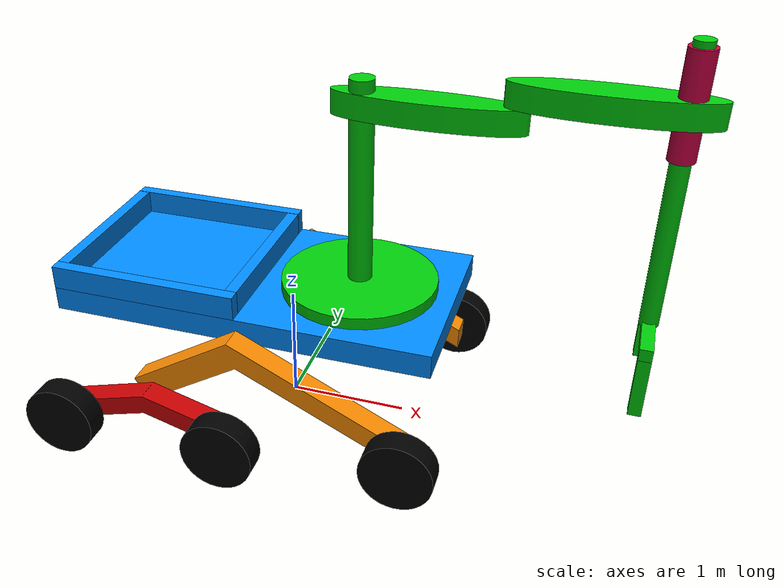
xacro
<?xml version="1.0"?>
<robot name="Robot_Rover" xmlns:xacro="http://www.ros.org/wiki/xacro">

<!-- ARGUMENTOS -->
<xacro:arg name="prefix" default="rover"/>
<xacro:arg name="update_rate" default="30"/>

<!-- IMPORTS -->
<xacro:include filename="$(find practica3)/urdf/base/robot_base.urdf.xacro"/>
<xacro:include filename="$(find practica3)/urdf/wheels/wheels.urdf.xacro"/>
<xacro:include filename="$(find practica3)/urdf/arm/arm.urdf.xacro"/>

<xacro:include filename="$(find practica3)/urdf/sensors/imu.urdf.xacro"/>
<xacro:include filename="$(find practica3)/urdf/sensors/camera_front.urdf.xacro"/>
<xacro:include filename="$(find practica3)/urdf/sensors/camera_ee.urdf.xacro"/>

<xacro:include filename="$(find practica3)/urdf/utils/materials.xacro"/>

<!-- REP-105 -->
<link name="base_footprint"/>
<joint name="base_footprint_joint" type="fixed">
  <parent link="base_footprint"/>
  <child link="base_link"/>
  <origin xyz="0 0 1.5" rpy="0 0 0"/>
</joint>

<!-- MATERIALS -->
<xacro:materials/>

<!-- ROBOT -->
<xacro:robot_base/>
<xacro:wheels/>
<xacro:robot_arm/>

<!-- SENSORES -->
<xacro:imu prefix="$(arg prefix)" update_rate="$(arg update_rate)"/>
<xacro:camera_front prefix="$(arg prefix)" update_rate="$(arg update_rate)"/>
<xacro:camera_ee prefix="$(arg prefix)" update_rate="$(arg update_rate)"/>

<!-- ROS2 CONTROL -->
<xacro:include filename="$(find practica3)/urdf/ros2_control.urdf.xacro"/>
<xacro:arg name="config_controllers" default="$(find practica3)/config/rover_controllers.yaml"/>
<xacro:arg name="update_rate" default="100"/>
<xacro:ros2_control/>

</robot>

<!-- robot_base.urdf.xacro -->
<robot xmlns:xacro="http://www.ros.org/wiki/xacro">

<xacro:macro name="robot_base">

  <!-- BASE -->
  <link name="base_link"/>

  <link name="Body_link">
    <visual>
      <origin xyz="-0.2 0 -0.4" rpy="0 0 0"/>
      <geometry>
        <mesh filename="package://practica3/meshes/dae/Cube.014.dae"
              scale="1.6 0.8 0.1"/>
      </geometry>
    </visual>

    <collision>
      <origin xyz="-0.2 0 -0.4" rpy="0 0 0"/>
      <geometry>
        <mesh filename="package://practica3/meshes/dae/Cube.014.dae"
              scale="1.6 0.8 0.1"/>
      </geometry>
    </collision>

    <inertial>
      <origin xyz="-0.2 0 -0.4" rpy="0 0 0"/>
      <mass value="15.0"/>
      <inertia
        ixx="3.25"
        ixy="0.0"
        ixz="0.0"
        iyy="12.85"
        iyz="0.0"
        izz="16.0"/>
    </inertial>
  </link>

  <joint name="base_joint" type="fixed">
    <parent link="base_link"/>
    <child link="Body_link"/>
  </joint>

  <!-- LATERAL 1 -->
  <link name="Lat1_link">
    <visual>
      <origin xyz="0 0 0" rpy="0 0 0"/>
      <geometry>
        <mesh filename="package://practica3/meshes/dae/Cube.015.dae"
              scale="0.8 0.05 0.1"/>
      </geometry>
    </visual>

    <collision>
      <origin xyz="0 0 0" rpy="0 0 0"/>
      <geometry>
        <mesh filename="package://practica3/meshes/dae/Cube.015.dae"
              scale="0.8 0.05 0.1"/>
      </geometry>
    </collision>

    <inertial>
      <origin xyz="0 0 0" rpy="0 0 0"/>
      <mass value="1.0"/>
      <inertia
        ixx="0.16667"
        ixy="0.0"
        ixz="0.0"
        iyy="0.00417"
        iyz="0.0"
        izz="0.16417"/>
    </inertial>
  </link>

  <joint name="Lat1_link_joint" type="fixed">
    <parent link="Body_link"/>
    <child link="Lat1_link"/>
    <origin xyz="-1.0 -0.75 -0.2" rpy="0 0 0"/>
  </joint>

  <!-- LATERAL 2 -->
  <link name="Lat2_link">
    <visual>
      <origin xyz="0 0 0" rpy="0 0 0"/>
      <geometry>
        <mesh filename="package://practica3/meshes/dae/Cube.016.dae"
              scale="0.8 0.05 0.1"/>
      </geometry>
    </visual>

    <collision>
      <origin xyz="0 0 0" rpy="0 0 0"/>
      <geometry>
        <mesh filename="package://practica3/meshes/dae/Cube.016.dae"
              scale="0.8 0.05 0.1"/>
      </geometry>
    </collision>

    <inertial>
      <origin xyz="0 0 0" rpy="0 0 0"/>
      <mass value="1.0"/>
      <inertia
        ixx="0.16667"
        ixy="0.0"
        ixz="0.0"
        iyy="0.00417"
        iyz="0.0"
        izz="0.16417"/>
    </inertial>
  </link>

  <joint name="Lat2_link_joint" type="fixed">
    <parent link="Body_link"/>
    <child link="Lat2_link"/>
    <origin xyz="-1.0 0.75 -0.2" rpy="-0.01745 0 0"/>
  </joint>

  <!-- LATERAL 3 -->
  <link name="Lat3_link">
    <visual>
      <origin xyz="0 0 0" rpy="0 0 0"/>
      <geometry>
        <mesh filename="package://practica3/meshes/dae/Cube.017.dae"
              scale="0.7 0.05 0.1"/>
      </geometry>
    </visual>

    <collision>
      <origin xyz="0 0 0" rpy="0 0 0"/>
      <geometry>
        <mesh filename="package://practica3/meshes/dae/Cube.017.dae"
              scale="0.7 0.05 0.1"/>
      </geometry>
    </collision>

    <inertial>
      <origin xyz="0 0 0" rpy="0 0 0"/>
      <mass value="1.0"/>
      <inertia
        ixx="0.16667"
        ixy="0.0"
        ixz="0.0"
        iyy="0.00417"
        iyz="0.0"
        izz="0.16417"/>
    </inertial>
  </link>

  <joint name="Lat3_link_joint" type="fixed">
    <parent link="Body_link"/>
    <child link="Lat3_link"/>
    <origin xyz="-0.25 0 -0.2" rpy="0 0 1.5708"/>
  </joint>

  <!-- LATERAL 4 -->
  <link name="Lat4_link">
    <visual>
      <origin xyz="0 0 0" rpy="0 0 0"/>
      <geometry>
        <mesh filename="package://practica3/meshes/dae/Cube.145.dae"
              scale="0.7 0.05 0.1"/>
      </geometry>
    </visual>

    <collision>
      <origin xyz="0 0 0" rpy="0 0 0"/>
      <geometry>
        <mesh filename="package://practica3/meshes/dae/Cube.145.dae"
              scale="0.7 0.05 0.1"/>
      </geometry>
    </collision>

    <inertial>
      <origin xyz="0 0 0" rpy="0 0 0"/>
      <mass value="1.0"/>
      <inertia
        ixx="0.16667"
        ixy="0.0"
        ixz="0.0"
        iyy="0.00417"
        iyz="0.0"
        izz="0.16417"/>
    </inertial>
  </link>

  <joint name="Lat4_link_joint" type="fixed">
    <parent link="Body_link"/>
    <child link="Lat4_link"/>
    <origin xyz="-1.75 0 -0.2" rpy="0 0 1.5708"/>
  </joint>

</xacro:macro>

</robot>

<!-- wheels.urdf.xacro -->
<robot xmlns:xacro="http://www.ros.org/wiki/xacro">

  <xacro:macro name="wheels">

    <!-- Estructura lateral izquierda -->
    <link name="Left_Main_link">
      <visual>
        <origin xyz="-0.35 0 -0.25" rpy="3.14 0.55 3.14"/>
        <geometry>
          <mesh filename="package://practica3/meshes/dae/Cube.001.dae"
                scale="1.0 1.0 1.0"/>
        </geometry>
      </visual>

      <collision>
        <origin xyz="-0.35 0 -0.25" rpy="3.14 0.55 3.14"/>
        <geometry>
          <mesh filename="package://practica3/meshes/dae/Cube.001.dae"
                scale="1.0 1.0 1.0"/>
        </geometry>
      </collision>

      <inertial>
        <origin xyz="0 0 0" rpy="0 0 0"/>
        <mass value="5.0"/>
        <inertia
          ixx="0.20056"
          ixy="0.0"
          ixz="0.29280"
          iyy="2.04375"
          iyz="0.0"
          izz="1.87180"/>
      </inertial>
    </link>

    <joint name="Left_Main_link_joint" type="fixed">
      <parent link="base_link"/>
      <child link="Left_Main_link"/>
      <origin xyz="-0.2 -0.9 -0.5" rpy="0 0 0"/>
    </joint>

    <!-- Brazo trasero izquierdo -->
    <link name="Left_Rear_2_link">
      <visual>
        <origin xyz="0.4 0 0" rpy="1.5708 0 -0.27"/>
        <geometry>
          <mesh filename="package://practica3/meshes/dae/Cube.010.dae"
                scale="1.0 1.0 1.0"/>
        </geometry>
      </visual>

      <collision>
        <origin xyz="0.4 0 0" rpy="1.5708 0 -0.27"/>
        <geometry>
          <mesh filename="package://practica3/meshes/dae/Cube.010.dae"
                scale="1.0 1.0 1.0"/>
        </geometry>
      </collision>

      <inertial>
        <origin xyz="0 0 0" rpy="0 0 0"/>
        <mass value="3.0"/>
        <inertia
          ixx="0.02064"
          ixy="0.0"
          ixz="-0.00874"
          iyy="0.53718"
          iyz="0.0"
          izz="0.52139"/>
      </inertial>
    </link>

    <joint name="Left_Rear_2_link_joint" type="fixed">
      <parent link="Left_Main_link"/>
      <child link="Left_Rear_2_link"/>
      <origin xyz="-0.7 -0.2 -0.6" rpy="1.5708 0 0"/>
    </joint>

    <!-- Rueda delantera izquierda -->
    <link name="Front_Left_Tire_link">
      <visual>
        <origin xyz="0 0 0" rpy="0 0 0"/>
        <geometry>
          <mesh filename="package://practica3/meshes/dae/Cylinder.001.dae"
                scale="1.0 1.0 1.0"/>
        </geometry>
      </visual>

      <collision>
        <origin xyz="0 0 0" rpy="0 0 0"/>
        <geometry>
          <mesh filename="package://practica3/meshes/dae/Cylinder.001.dae"
                scale="1.0 1.0 1.0"/>
        </geometry>
        <surface>
          <friction>
            <ode>
              <mu>1.000000</mu>
              <mu2>1.000000</mu2>
              <fdir1>0.000000 0.000000 1.000000</fdir1>
              <slip1>0.0050000</slip1>
              <slip2>0.0050000</slip2>
            </ode>
          </friction>
        </surface>
      </collision>

      <inertial>
        <origin xyz="0 0 0"/>
        <mass value="2.0"/>
        <inertia
          ixx="0.05138"
          ixy="0.0"
          ixz="0.0"
          iyy="0.08942"
          iyz="0.0"
          izz="0.05138"/>
      </inertial>
    </link>

    <joint name="Front_Left_Tire_link_joint" type="continuous">
      <parent link="Left_Main_link"/>
      <child link="Front_Left_Tire_link"/>
      <origin xyz="1.45 -0.2 -0.7" rpy="1.5708 0 0"/>
      <axis xyz="0 0 -1"/>
    </joint>

    <transmission name="front_left_trans">
      <type>transmission_interface/SimpleTransmission</type>
        <joint name="Front_Left_Tire_link_joint">
        <hardwareInterface>hardware_interface/VelocityJointInterface</hardwareInterface>
        </joint>
      <actuator name="front_left_motor">
        <hardwareInterface>hardware_interface/VelocityJointInterface</hardwareInterface>
        <mechanicalReduction>1</mechanicalReduction>
      </actuator>
    </transmission>

    <gazebo reference="Front_Left_Tire_link">
        <mu1>5</mu1>
        <mu2>5</mu2>
    </gazebo>

    <!-- Ruedas traseras izquierdas -->
    <link name="Back_Left_Tire1_link">
      <visual>
        <origin xyz="0 0 0" rpy="0 0 0"/>
        <geometry>
          <mesh filename="package://practica3/meshes/dae/Cylinder.002.dae"
                scale="1.0 1.0 1.0"/>
        </geometry>
      </visual>

      <collision>
        <origin xyz="0 0 0" rpy="0 0 0"/>
        <geometry>
          <mesh filename="package://practica3/meshes/dae/Cylinder.002.dae"
                scale="1.0 1.0 1.0"/>
        </geometry>
        <surface>
          <friction>
            <ode>
              <mu>1.000000</mu>
              <mu2>1.000000</mu2>
              <fdir1>0.000000 0.000000 1.000000</fdir1>
              <slip1>0.0050000</slip1>
              <slip2>0.0050000</slip2>
            </ode>
          </friction>
        </surface>
      </collision>

      <inertial>
        <origin xyz="0 0 0"/>
        <mass value="2.0"/>
        <inertia
          ixx="0.05138"
          ixy="0.0"
          ixz="0.0"
          iyy="0.08942"
          iyz="0.0"
          izz="0.05138"/>
      </inertial>
    </link>

    <joint name="Back_Left_Tire1_link_joint" type="continuous">
      <parent link="Left_Rear_2_link"/>
      <child link="Back_Left_Tire1_link"/>
      <origin xyz="0.75 -0.1 0.2" rpy="0 0 0"/>
      <axis xyz="0 0 -1"/>
    </joint>

    <transmission name="back_left_1_trans">
      <type>transmission_interface/SimpleTransmission</type>
      <joint name="Back_Left_Tire1_link_joint">
        <hardwareInterface>hardware_interface/VelocityJointInterface</hardwareInterface>
      </joint>
      <actuator name="back_left_motor_1">
        <hardwareInterface>hardware_interface/VelocityJointInterface</hardwareInterface>
        <mechanicalReduction>1</mechanicalReduction>
      </actuator>
    </transmission>

    <gazebo reference="Back_Left_Tire1_link">
        <mu1>5</mu1>
        <mu2>5</mu2>
    </gazebo>

    <link name="Back_Left_Tire2_link">
      <visual>
        <origin xyz="0 0 0" rpy="0 0 0"/>
        <geometry>
          <mesh filename="package://practica3/meshes/dae/Cylinder.002.dae"
                scale="1.0 1.0 1.0"/>
        </geometry>
      </visual>

      <collision>
        <origin xyz="0 0 0" rpy="0 0 0"/>
        <geometry>
          <mesh filename="package://practica3/meshes/dae/Cylinder.002.dae"
                scale="1.0 1.0 1.0"/>
        </geometry>
        <surface>
          <friction>
            <ode>
              <mu>1.000000</mu>
              <mu2>1.000000</mu2>
              <fdir1>0.000000 0.000000 1.000000</fdir1>
              <slip1>0.0050000</slip1>
              <slip2>0.0050000</slip2>
            </ode>
          </friction>
        </surface>
      </collision>

      <inertial>
        <origin xyz="0 0 0"/>
        <mass value="2.0"/>
        <inertia
          ixx="0.05138"
          ixy="0.0"
          ixz="0.0"
          iyy="0.08942"
          iyz="0.0"
          izz="0.05138"/>
      </inertial>
    </link>

    <joint name="Back_Left_Tire2_link_joint" type="continuous">
      <parent link="Left_Rear_2_link"/>
      <child link="Back_Left_Tire2_link"/>
      <origin xyz="-0.65 -0.1 0.2" rpy="0 0 0"/>
      <axis xyz="0 0 -1"/>
    </joint>

    <transmission name="back_left_2_trans">
      <type>transmission_interface/SimpleTransmission</type>
        <joint name="Back_Left_Tire2_link_joint">
          <hardwareInterface>hardware_interface/VelocityJointInterface</hardwareInterface>
        </joint>
      <actuator name="back_left_motor_2">
        <hardwareInterface>hardware_interface/VelocityJointInterface</hardwareInterface>
        <mechanicalReduction>1</mechanicalReduction>
      </actuator>
  </transmission>

    <gazebo reference="Back_Left_Tire2_link">
        <mu1>5</mu1>
        <mu2>5</mu2>
    </gazebo>

    <!-- Estructura lateral derecha -->
    <link name="Right_Main_link">
      <visual>
        <origin xyz="-0.35 0 -0.25" rpy="3.14 0.55 3.14"/>
        <geometry>
          <mesh filename="package://practica3/meshes/dae/Cube.005.dae"
                scale="1.0 1.0 1.0"/>
        </geometry>
      </visual>

      <collision>
        <origin xyz="-0.35 0 -0.25" rpy="3.14 0.55 3.14"/>
        <geometry>
          <mesh filename="package://practica3/meshes/dae/Cube.005.dae"
                scale="1.0 1.0 1.0"/>
        </geometry>
      </collision>

      <inertial>
        <origin xyz="0 0 0"/>
        <mass value="5.0"/>
        <inertia
          ixx="0.20056"
          ixy="0.0"
          ixz="0.29280"
          iyy="2.04375"
          iyz="0.0"
          izz="1.87180"/>
      </inertial>
    </link>

    <joint name="Right_Main_link_joint" type="fixed">
      <parent link="base_link"/>
      <child link="Right_Main_link"/>
      <origin xyz="-0.2 0.9 -0.5" rpy="3.14 3.14 3.14"/>
    </joint>

    <!-- Brazo trasero derecho -->
    <link name="Right_Rear_2_link">
      <visual>
        <origin xyz="0.4 0 0" rpy="1.5708 0 -0.25"/>
        <geometry>
          <mesh filename="package://practica3/meshes/dae/Cube.010.dae"
                scale="1.0 1.0 1.0"/>
        </geometry>
      </visual>

      <collision>
        <origin xyz="0.4 0 0" rpy="1.5708 0 -0.25"/>
        <geometry>
          <mesh filename="package://practica3/meshes/dae/Cube.010.dae"
                scale="1.0 1.0 1.0"/>
        </geometry>
      </collision>

      <inertial>
        <origin xyz="0 0 0"/>
        <mass value="3.0"/>
        <inertia
          ixx="0.02064"
          ixy="0.0"
          ixz="-0.00874"
          iyy="0.53718"
          iyz="0.0"
          izz="0.52139"/>
      </inertial>
    </link>

    <joint name="Right_Rear_2_link_joint" type="fixed">
      <parent link="Right_Main_link"/>
      <child link="Right_Rear_2_link"/>
      <origin xyz="-0.7 0.2 -0.6" rpy="1.5708 0 3.1416"/>
    </joint>

    <!-- Rueda delantera derecha -->
    <link name="Front_Right_Tire_link">
      <visual>
        <origin xyz="0 0 0" rpy="0 0 0"/>
        <geometry>
          <mesh filename="package://practica3/meshes/dae/Cylinder.dae"
                scale="1.0 1.0 1.0"/>
        </geometry>
      </visual>

      <collision>
        <origin xyz="0 0 0" rpy="0 0 0"/>
        <geometry>
          <mesh filename="package://practica3/meshes/dae/Cylinder.dae"
                scale="1.0 1.0 1.0"/>
        </geometry>
        <surface>
          <friction>
            <ode>
              <mu>1.000000</mu>
              <mu2>1.000000</mu2>
              <fdir1>0.000000 0.000000 1.000000</fdir1>
              <slip1>0.0050000</slip1>
              <slip2>0.0050000</slip2>
            </ode>
          </friction>
        </surface>
      </collision>

      <inertial>
        <origin xyz="0 0 0"/>
        <mass value="2.0"/>
        <inertia
          ixx="0.05138"
          ixy="0.0"
          ixz="0.0"
          iyy="0.08942"
          iyz="0.0"
          izz="0.05138"/>
      </inertial>
    </link>

    <joint name="Front_Right_Tire_link_joint" type="continuous">
      <parent link="Right_Main_link"/>
      <child link="Front_Right_Tire_link"/>
      <origin xyz="1.45 0.2 -0.7" rpy="-1.5708 0 0"/>
      <axis xyz="0 0 -1"/>
    </joint>

    <transmission name="front_right_trans">
      <type>transmission_interface/SimpleTransmission</type>
        <joint name="Front_Right_Tire_link_joint">
        <hardwareInterface>hardware_interface/VelocityJointInterface</hardwareInterface>
      </joint>
      <actuator name="front_right_motor">
        <hardwareInterface>hardware_interface/VelocityJointInterface</hardwareInterface>
        <mechanicalReduction>1</mechanicalReduction>
      </actuator>
    </transmission>

    <gazebo reference="Front_Right_Tire_link">
        <mu1>5</mu1>
        <mu2>5</mu2>
    </gazebo>

    <!-- Ruedas traseras derechas -->
    <link name="Back_Right_Tire1_link">
      <visual>
        <origin xyz="0 0 0" rpy="0 0 0"/>
        <geometry>
          <mesh filename="package://practica3/meshes/dae/Cylinder.003.dae"
                scale="1.0 1.0 1.0"/>
        </geometry>
      </visual>

      <collision>
        <origin xyz="0 0 0" rpy="0 0 0"/>
        <geometry>
          <mesh filename="package://practica3/meshes/dae/Cylinder.003.dae"
                scale="1.0 1.0 1.0"/>
        </geometry>
        <surface>
          <friction>
            <ode>
              <mu>1.000000</mu>
              <mu2>1.000000</mu2>
              <fdir1>0.000000 0.000000 1.000000</fdir1>
              <slip1>0.0050000</slip1>
              <slip2>0.0050000</slip2>
            </ode>
          </friction>
        </surface>
      </collision>

      <inertial>
        <origin xyz="0 0 0"/>
        <mass value="2.0"/>
        <inertia
          ixx="0.05138"
          ixy="0.0"
          ixz="0.0"
          iyy="0.08942"
          iyz="0.0"
          izz="0.05138"/>
      </inertial>
    </link>

    <joint name="Back_Right_Tire1_link_joint" type="continuous">
      <parent link="Right_Rear_2_link"/>
      <child link="Back_Right_Tire1_link"/>
      <origin xyz="-0.65 -0.1 0.2" rpy="0 0 0"/>
      <axis xyz="0 0 -1"/>
    </joint>

    <transmission name="back_right_1_trans">
      <type>transmission_interface/SimpleTransmission</type>
        <joint name="Back_Right_Tire1_link_joint">
          <hardwareInterface>hardware_interface/VelocityJointInterface</hardwareInterface>
        </joint>
        <actuator name="back_right_motor_1">
          <hardwareInterface>hardware_interface/VelocityJointInterface</hardwareInterface>
          <mechanicalReduction>1</mechanicalReduction>
        </actuator>
    </transmission>

    <gazebo reference="Back_Right_Tire1_link">
        <mu1>5</mu1>
        <mu2>5</mu2>
    </gazebo>

    <link name="Back_Right_Tire2_link">
      <visual>
        <origin xyz="0 0 0" rpy="0 0 0"/>
        <geometry>
          <mesh filename="package://practica3/meshes/dae/Cylinder.004.dae"
                scale="1.0 1.0 1.0"/>
        </geometry>
      </visual>

      <collision>
        <origin xyz="0 0 0" rpy="0 0 0"/>
        <geometry>
          <mesh filename="package://practica3/meshes/dae/Cylinder.004.dae"
                scale="1.0 1.0 1.0"/>
        </geometry>
        <surface>
          <friction>
            <ode>
              <mu>1.000000</mu>
              <mu2>1.000000</mu2>
              <fdir1>0.000000 0.000000 1.000000</fdir1>
              <slip1>0.0050000</slip1>
              <slip2>0.0050000</slip2>
            </ode>
          </friction>
        </surface>
      </collision>

      <inertial>
        <origin xyz="0 0 0"/>
        <mass value="2.0"/>
        <inertia
          ixx="0.05138"
          ixy="0.0"
          ixz="0.0"
          iyy="0.08942"
          iyz="0.0"
          izz="0.05138"/>
      </inertial>
    </link>

    <joint name="Back_Right_Tire2_link_joint" type="continuous">
      <parent link="Right_Rear_2_link"/>
      <child link="Back_Right_Tire2_link"/>
      <origin xyz="0.75 -0.1 0.2" rpy="0 0 0"/>
      <axis xyz="0 0 -1"/>
    </joint>

    <transmission name="back_right_2_trans">
      <type>transmission_interface/SimpleTransmission</type>
        <joint name="Back_Right_Tire2_link_joint">
          <hardwareInterface>hardware_interface/VelocityJointInterface</hardwareInterface>
        </joint>
        <actuator name="back_right_motor_2">
          <hardwareInterface>hardware_interface/VelocityJointInterface</hardwareInterface>
          <mechanicalReduction>1</mechanicalReduction>
        </actuator>
    </transmission>

    <gazebo reference="Back_Right_Tire2_link">
        <mu1>5</mu1>
        <mu2>5</mu2>
    </gazebo>

  </xacro:macro>

</robot>

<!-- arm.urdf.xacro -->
<robot xmlns:xacro="http://www.ros.org/wiki/xacro">

<xacro:macro name="robot_arm">

  <!-- ARM 1 -->
  <link name="Arm1_link">
    <visual>
      <origin xyz="0 0 1.0" rpy="0 0 0"/>
      <geometry>
        <mesh filename="package://practica3/meshes/dae/Cylinder.008.dae"
              scale="0.1 0.1 0.85"/>
      </geometry>
    </visual>

    <collision>
      <origin xyz="0 0 1.0" rpy="0 0 0"/>
      <geometry>
        <mesh filename="package://practica3/meshes/dae/Cylinder.008.dae"
              scale="0.1 0.1 0.85"/>
      </geometry>
    </collision>

    <inertial>
      <origin xyz="0 0 0.35823" rpy="0 0 0"/>
      <mass value="4.0"/>
      <inertia
        ixx="0.89612"
        ixy="0.0"
        ixz="0.0"
        iyy="0.89612"
        iyz="0.0"
        izz="0.53844"/>
    </inertial>
  </link>

  <joint name="Arm1_link_joint" type="fixed">
    <parent link="Body_link"/>
    <child link="Arm1_link"/>
    <origin xyz="0.6 0 -0.35"/>
  </joint>

  <!-- ARM 2 -->
  <link name="Arm2_link">
    <visual>
      <origin xyz="0.5 0 0" rpy="0 0 0"/>
      <geometry>
        <mesh filename="package://practica3/meshes/dae/Cylinder.009.dae"
              scale="0.75 0.15 0.1"/>
      </geometry>
    </visual>

    <collision>
      <origin xyz="0.5 0 0" rpy="0 0 0"/>
      <geometry>
        <mesh filename="package://practica3/meshes/dae/Cylinder.009.dae"
              scale="0.75 0.15 0.1"/>
      </geometry>
    </collision>

    <inertial>
      <origin xyz="0.54878 0 0" rpy="0 0 0"/>
      <mass value="4.0"/>
      <inertia
        ixx="0.03414"
        ixy="-0.00071"
        ixz="-0.00072"
        iyy="0.80029"
        iyz="0.0"
        izz="0.80928"/>
    </inertial>
  </link>

  <joint name="Arm2_link_joint" type="revolute">
    <parent link="Arm1_link"/>
    <child link="Arm2_link"/>
    <origin xyz="0 0 1.65"/>
    <axis xyz="0 0 1"/>
    <limit lower="-6.28" upper="6.28" effort="100" velocity="5.0"/>
  </joint>

  <transmission name="Arm2_link_trans">
    <type>transmission_interface/SimpleTransmission</type>
    <joint name="Arm2_link_joint">
      <hardwareInterface>hardware_interface/PositionJointInterface</hardwareInterface>
    </joint>
    <actuator name="Arm2_link_motor">
      <hardwareInterface>hardware_interface/PositionJointInterface</hardwareInterface>
      <mechanicalReduction>1</mechanicalReduction>
    </actuator>
  </transmission>

  <!-- ARM 3 -->
  <link name="Arm3_link">
    <visual>
      <origin xyz="0.65 0 0" rpy="0 0 0"/>
      <geometry>
        <mesh filename="package://practica3/meshes/dae/Cylinder.010.dae"
              scale="0.75 0.15 0.1"/>
      </geometry>
    </visual>

    <collision>
      <origin xyz="0.65 0 0" rpy="0 0 0"/>
      <geometry>
        <mesh filename="package://practica3/meshes/dae/Cylinder.010.dae"
              scale="0.75 0.15 0.1"/>
      </geometry>
    </collision>

    <inertial>
      <origin xyz="0.60122 0 0" rpy="0 0 0"/>
      <mass value="4.0"/>
      <inertia
        ixx="0.03414"
        ixy="-0.00071"
        ixz="0.00072"
        iyy="0.80029"
        iyz="0.0"
        izz="0.80928"/>
    </inertial>
  </link>

  <joint name="Arm3_link_joint" type="revolute">
    <parent link="Arm2_link"/>
    <child link="Arm3_link"/>
    <origin xyz="1.15 0 0.2"/>
    <axis xyz="0 0 1"/>
    <limit lower="-2.3" upper="2.3" effort="10" velocity="5.0"/>
  </joint>

  <transmission name="Arm3_link_trans">
    <type>transmission_interface/SimpleTransmission</type>
    <joint name="Arm3_link_joint">
      <hardwareInterface>hardware_interface/PositionJointInterface</hardwareInterface>
    </joint>
    <actuator name="Arm3_link_motor">
      <hardwareInterface>hardware_interface/PositionJointInterface</hardwareInterface>
      <mechanicalReduction>1</mechanicalReduction>
    </actuator>
  </transmission>

  <!-- ARM 4 -->
  <link name="Arm4_link">
    <visual>
      <origin xyz="0 0 -0.35" rpy="0 0 0"/>
      <geometry>
        <mesh filename="package://practica3/meshes/dae/Cylinder.007.dae"
              scale="0.1 0.1 0.75"/>
      </geometry>
    </visual>

    <collision>
      <origin xyz="0 0 -0.35" rpy="0 0 0"/>
      <geometry>
        <mesh filename="package://practica3/meshes/dae/Cylinder.005.dae"
              scale="0.1 0.1 0.75"/>
      </geometry>
    </collision>

    <inertial>
      <origin xyz="0 0 0" rpy="0 0 0"/>
      <mass value="2.0"/>
      <inertia
        ixx="0.11786"
        ixy="0.0"
        ixz="0.0"
        iyy="0.11786"
        iyz="0.0"
        izz="0.00994"/>
    </inertial>
  </link>

  <joint name="Arm4_link_joint" type="revolute">
    <parent link="Arm3_link"/>
    <child link="Arm4_link"/>
    <origin xyz="1.15 0 0.05"/>
    <axis xyz="0 0 1"/>
    <limit lower="-3.14" upper="3.14" effort="100" velocity="5"/>
  </joint>

  <transmission name="Arm4_link_trans">
    <type>transmission_interface/SimpleTransmission</type>
    <joint name="Arm4_link_joint">
      <hardwareInterface>hardware_interface/PositionJointInterface</hardwareInterface>
    </joint>
    <actuator name="Arm4_link_motor">
      <hardwareInterface>hardware_interface/PositionJointInterface</hardwareInterface>
      <mechanicalReduction>1</mechanicalReduction>
    </actuator>
  </transmission>

  <!-- EXTENSOR -->
  <link name="Extensor_link">
    <visual>
      <origin xyz="0 0 0.41" rpy="3.14159 0 3.14159"/>
      <geometry>
        <mesh filename="package://practica3/meshes/dae/Cylinder.011.dae"
              scale="0.075 0.075 0.5"/>
      </geometry>
    </visual>

    <collision>
      <origin xyz="0 0 0.41" rpy="-3.14159 0 0"/>
      <geometry>
        <mesh filename="package://practica3/meshes/dae/Cylinder.011.dae"
              scale="0.075 0.075 0.5"/>
      </geometry>
    </collision>

    <inertial>
      <origin xyz="0 0 0.00147" rpy="0 0 0"/>
      <mass value="2.0"/>
      <inertia
        ixx="0.13344"
        ixy="0.0"
        ixz="0.0"
        iyy="0.13344"
        iyz="0.0"
        izz="0.01688"/>
    </inertial>
  </link>

  <joint name="Extensor_link_joint" type="prismatic">
    <parent link="Arm4_link"/>
    <child link="Extensor_link"/>
    <origin xyz="0 0 -0.84" rpy="3.14159 0 3.14159"/>
    <axis xyz="0 0 1"/>
    <limit lower="-1.25" upper="0.85" effort="200" velocity="5.0"/>
  </joint>

  <transmission name="Extensor_link_trans">
    <type>transmission_interface/SimpleTransmission</type>
    <joint name="Extensor_link_joint">
      <hardwareInterface>hardware_interface/PositionJointInterface</hardwareInterface>
    </joint>
    <actuator name="Extensor_link_motor">
      <hardwareInterface>hardware_interface/PositionJointInterface</hardwareInterface>
      <mechanicalReduction>1</mechanicalReduction>
    </actuator>
  </transmission>

  <!-- GRIPPER LEFT -->
  <link name="Garra_Left_link">
    <visual>
      <origin xyz="0 0 -0.1" rpy="3.14159 0 3.14159"/>
      <geometry>
        <mesh filename="package://practica3/meshes/dae/Cube.008.dae"
              scale="0.05 0.05 0.25"/>
      </geometry>
    </visual>

    <collision>
      <origin xyz="0 0 -0.1" rpy="0 0 0"/>
      <geometry>
        <mesh filename="package://practica3/meshes/dae/Cube.008.dae"
              scale="0.05 0.05 0.25"/>
      </geometry>
    </collision>

    <inertial>
      <origin xyz="0 0 -0.1" rpy="0 0 0"/>
      <mass value="2.0"/>
      <inertia
        ixx="0.04333"
        ixy="0.0"
        ixz="0.0"
        iyy="0.04333"
        iyz="0.0"
        izz="0.00333"/>
    </inertial>
  </link>

  <joint name="Garra_Left_link_joint" type="prismatic">
    <parent link="Extensor_link"/>
    <child link="Garra_Left_link"/>
    <origin xyz="0 -0.4 1.31" rpy="0 0 0"/>
    <axis xyz="0 1 0"/>
    <limit lower="0" upper="0.11" effort="200" velocity="5.0"/>
  </joint>

  <transmission name="Garra_Left_link_trans">
    <type>transmission_interface/SimpleTransmission</type>
    <joint name="Garra_Left_link_joint">
      <hardwareInterface>hardware_interface/PositionJointInterface</hardwareInterface>
    </joint>
    <actuator name="Garra_Left_link_motor">
      <hardwareInterface>hardware_interface/PositionJointInterface</hardwareInterface>
      <mechanicalReduction>1</mechanicalReduction>
    </actuator>
  </transmission>

  <!-- GRIPPER RIGHT -->
  <link name="Garra_Right_link">
    <visual>
      <origin xyz="0 0 -0.1" rpy="3.14159 0 3.14159"/>
      <geometry>
        <mesh filename="package://practica3/meshes/dae/Cube.007.dae"
              scale="0.05 0.05 0.25"/>
      </geometry>
    </visual>

    <collision>
      <origin xyz="0 0 -0.1" rpy="0 0 0"/>
      <geometry>
        <mesh filename="package://practica3/meshes/dae/Cube.007.dae"
              scale="0.05 0.05 0.25"/>
      </geometry>
    </collision>

    <inertial>
      <origin xyz="0 0 -0.1" rpy="0 0 0"/>
      <mass value="2.0"/>
      <inertia
        ixx="0.04333"
        ixy="0.0"
        ixz="0.0"
        iyy="0.04333"
        iyz="0.0"
        izz="0.00333"/>
    </inertial>
  </link>

  <joint name="Garra_Right_link_joint" type="prismatic">
    <parent link="Extensor_link"/>
    <child link="Garra_Right_link"/>
    <origin xyz="0 0.4 1.31" rpy="0 0 0"/>
    <axis xyz="0 -1 0"/>
    <limit lower="0" upper="0.11" effort="200" velocity="5.0"/>
  </joint>

  <transmission name="Garra_Right_link_trans">
    <type>transmission_interface/SimpleTransmission</type>
    <joint name="Garra_Right_link_joint">
      <hardwareInterface>hardware_interface/PositionJointInterface</hardwareInterface>
    </joint>
    <actuator name="Garra_Right_link_motor">
      <hardwareInterface>hardware_interface/PositionJointInterface</hardwareInterface>
      <mechanicalReduction>1</mechanicalReduction>
    </actuator>
  </transmission>

</xacro:macro>

</robot>

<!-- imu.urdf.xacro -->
<robot xmlns:xacro="http://www.ros.org/wiki/xacro">

<xacro:macro name="imu" params="prefix update_rate">

  <link name="${prefix}_imu_link"/>

  <joint name="${prefix}_imu_joint" type="fixed">
    <parent link="base_link"/>
    <child link="${prefix}_imu_link"/>
    <origin xyz="0 0 0" rpy="0 0 0"/>
  </joint>

  <gazebo reference="${prefix}_imu_link">
    <sensor name="${prefix}_imu_sensor" type="imu">
      <always_on>1</always_on>
      <update_rate>${update_rate}</update_rate>
      <topic>/imu</topic>
    </sensor>
  </gazebo>

</xacro:macro>

</robot>

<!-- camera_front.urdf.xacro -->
<robot xmlns:xacro="http://www.ros.org/wiki/xacro">

<xacro:macro name="camera_front" params="prefix update_rate">

  <link name="${prefix}_camera_front_link"/>

  <joint name="${prefix}_camera_front_joint" type="fixed">
    <parent link="base_link"/>
    <child link="${prefix}_camera_front_link"/>
    <origin xyz="0.5 0 0.2" rpy="0 0 0"/>
  </joint>

  <gazebo reference="${prefix}_camera_front_link">
    <sensor name="${prefix}_camera_sensor" type="camera">
      <visualize>true</visualize>
      <update_rate>${update_rate}</update_rate>
      <topic>/front_camera/image</topic>

      <camera>
        <horizontal_fov>1.57</horizontal_fov>

        <image>
          <width>640</width>
          <height>480</height>
          <format>R8G8B8</format>
        </image>

        <clip>
          <near>0.10</near>
          <far>15.0</far>
        </clip>

        <noise>
          <type>gaussian</type>
          <mean>0.0</mean>
          <stddev>0.007</stddev>
        </noise>

        <optical_frame_id>${prefix}_camera_front_link</optical_frame_id>
      </camera>
    </sensor>
  </gazebo>

</xacro:macro>

</robot>

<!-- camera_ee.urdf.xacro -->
<robot xmlns:xacro="http://www.ros.org/wiki/xacro">

<xacro:macro name="camera_ee" params="prefix update_rate">

  <link name="${prefix}_camera_ee_link"/>

  <joint name="${prefix}_camera_ee_joint" type="fixed">
    <parent link="Extensor_link"/>
    <child link="${prefix}_camera_ee_link"/>
    <origin xyz="0 0 0.8" rpy="0 -1.5708 0"/>
  </joint>

  <gazebo reference="${prefix}_camera_ee_link">
    <sensor name="${prefix}_camera_ee_sensor" type="camera">
      <visualize>true</visualize>
      <update_rate>${update_rate}</update_rate>
      <topic>/arm_camera/image</topic>

      <camera>
        <horizontal_fov>1.57</horizontal_fov>

        <image>
          <width>640</width>
          <height>480</height>
          <format>R8G8B8</format>
        </image>

        <clip>
          <near>0.10</near>
          <far>10.0</far>
        </clip>

        <optical_frame_id>${prefix}_camera_ee_link</optical_frame_id>
      </camera>
    </sensor>
  </gazebo>

</xacro:macro>

</robot>

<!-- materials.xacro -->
<robot xmlns:xacro="http://www.ros.org/wiki/xacro">

<xacro:macro name="materials">

  <material name="Material">
    <color rgba="0 0 0 1"/>
  </material>

  <material name="Material.001">
    <color rgba="0.8 0 0.00392 1"/>
  </material>

  <material name="Material.002">
    <color rgba="1 0.55686 0 1"/>
  </material>

  <material name="Material.003">
    <color rgba="0 0.5451 1 1"/>
  </material>

  <material name="Material.004">
    <color rgba="0 0.8 0.03922 1"/>
  </material>

  <material name="Material.005">
    <color rgba="0.8 0 0.26667 1"/>
  </material>

</xacro:macro>

</robot>
